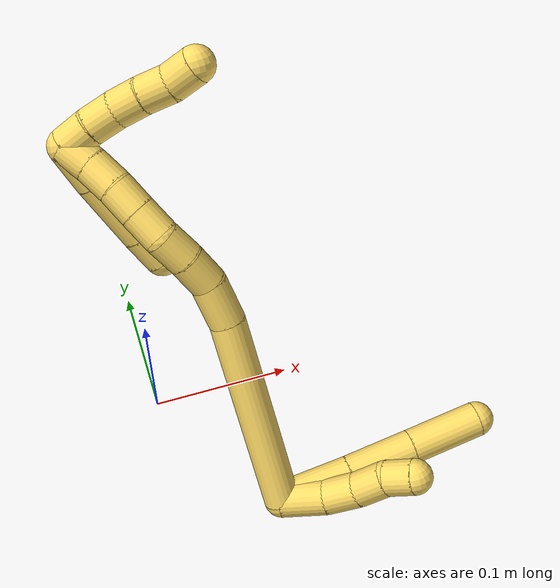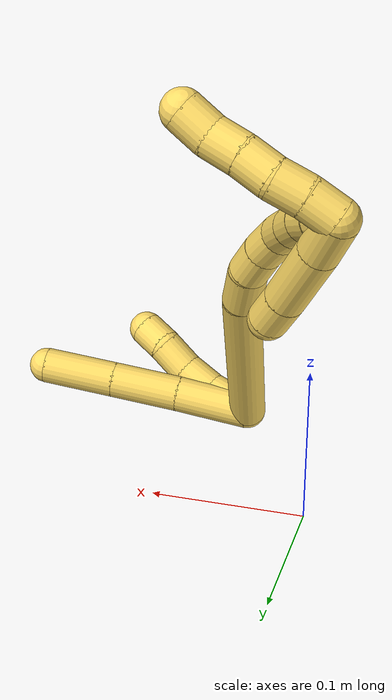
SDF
<sdf version="1.7">
 <world name="default">
  <model name="5">
   <static>0</static>
   <link name="5">
    <collision name="collision-cylinder-e_1_2_8">
     <pose>0.024161 -0.008393 0.001268 1.42088 1.23294 1.0949</pose>
     <geometry><cylinder><radius>0.0125</radius><length>0.051218</length></cylinder></geometry>
     <surface>
      <friction><ode><mu>1.16</mu><mu2>1.16</mu2><slip1>0</slip1><slip2>0</slip2></ode></friction>
      <contact><ode><kp>1e+06</kp><kd>1</kd><max_vel>0</max_vel><min_depth>0.001</min_depth></ode></contact>
     </surface>
    </collision>
    <visual name="visual-cylinder-e_1_2_8">
     <pose>0.024161 -0.008393 0.001268 1.42088 1.23294 1.0949</pose>
     <geometry><cylinder><radius>0.0125</radius><length>0.051218</length></cylinder></geometry>
     <material><ambient>1 0.858824 0.4 1</ambient></material>
    </visual>
    <collision name="collision-cylinder-e_2_8_9">
     <pose>0.071176 -0.023937 0.004088 1.35704 1.26092 1.06368</pose>
     <geometry><cylinder><radius>0.0125</radius><length>0.047993</length></cylinder></geometry>
     <surface>
      <friction><ode><mu>1.16</mu><mu2>1.16</mu2><slip1>0</slip1><slip2>0</slip2></ode></friction>
      <contact><ode><kp>1e+06</kp><kd>1</kd><max_vel>0</max_vel><min_depth>0.001</min_depth></ode></contact>
     </surface>
    </collision>
    <visual name="visual-cylinder-e_2_8_9">
     <pose>0.071176 -0.023937 0.004088 1.35704 1.26092 1.06368</pose>
     <geometry><cylinder><radius>0.0125</radius><length>0.047993</length></cylinder></geometry>
     <material><ambient>1 0.858824 0.4 1</ambient></material>
    </visual>
    <collision name="collision-cylinder-e_3_9_6">
     <pose>0.118241 -0.038552 0.007364 1.34381 1.26438 1.05503</pose>
     <geometry><cylinder><radius>0.0125</radius><length>0.05079</length></cylinder></geometry>
     <surface>
      <friction><ode><mu>1.16</mu><mu2>1.16</mu2><slip1>0</slip1><slip2>0</slip2></ode></friction>
      <contact><ode><kp>1e+06</kp><kd>1</kd><max_vel>0</max_vel><min_depth>0.001</min_depth></ode></contact>
     </surface>
    </collision>
    <visual name="visual-cylinder-e_3_9_6">
     <pose>0.118241 -0.038552 0.007364 1.34381 1.26438 1.05503</pose>
     <geometry><cylinder><radius>0.0125</radius><length>0.05079</length></cylinder></geometry>
     <material><ambient>1 0.858824 0.4 1</ambient></material>
    </visual>
    <collision name="collision-cylinder-e_1_2_10">
     <pose>0.012068 -0.010249 -0.001423 1.7088 0.862012 0.971776</pose>
     <geometry><cylinder><radius>0.0125</radius><length>0.031793</length></cylinder></geometry>
     <surface>
      <friction><ode><mu>1.16</mu><mu2>1.16</mu2><slip1>0</slip1><slip2>0</slip2></ode></friction>
      <contact><ode><kp>1e+06</kp><kd>1</kd><max_vel>0</max_vel><min_depth>0.001</min_depth></ode></contact>
     </surface>
    </collision>
    <visual name="visual-cylinder-e_1_2_10">
     <pose>0.012068 -0.010249 -0.001423 1.7088 0.862012 0.971776</pose>
     <geometry><cylinder><radius>0.0125</radius><length>0.031793</length></cylinder></geometry>
     <material><ambient>1 0.858824 0.4 1</ambient></material>
    </visual>
    <collision name="collision-cylinder-e_2_10_11">
     <pose>0.032764 -0.028945 -0.001048 1.36101 0.784891 0.646612</pose>
     <geometry><cylinder><radius>0.0125</radius><length>0.024417</length></cylinder></geometry>
     <surface>
      <friction><ode><mu>1.16</mu><mu2>1.16</mu2><slip1>0</slip1><slip2>0</slip2></ode></friction>
      <contact><ode><kp>1e+06</kp><kd>1</kd><max_vel>0</max_vel><min_depth>0.001</min_depth></ode></contact>
     </surface>
    </collision>
    <visual name="visual-cylinder-e_2_10_11">
     <pose>0.032764 -0.028945 -0.001048 1.36101 0.784891 0.646612</pose>
     <geometry><cylinder><radius>0.0125</radius><length>0.024417</length></cylinder></geometry>
     <material><ambient>1 0.858824 0.4 1</ambient></material>
    </visual>
    <collision name="collision-cylinder-e_3_11_12">
     <pose>0.048572 -0.045863 0.004664 1.138 0.65584 0.42848</pose>
     <geometry><cylinder><radius>0.0125</radius><length>0.023546</length></cylinder></geometry>
     <surface>
      <friction><ode><mu>1.16</mu><mu2>1.16</mu2><slip1>0</slip1><slip2>0</slip2></ode></friction>
      <contact><ode><kp>1e+06</kp><kd>1</kd><max_vel>0</max_vel><min_depth>0.001</min_depth></ode></contact>
     </surface>
    </collision>
    <visual name="visual-cylinder-e_3_11_12">
     <pose>0.048572 -0.045863 0.004664 1.138 0.65584 0.42848</pose>
     <geometry><cylinder><radius>0.0125</radius><length>0.023546</length></cylinder></geometry>
     <material><ambient>1 0.858824 0.4 1</ambient></material>
    </visual>
    <collision name="collision-cylinder-e_4_12_5">
     <pose>0.062103 -0.062213 0.008741 1.55003 0.678356 0.665429</pose>
     <geometry><cylinder><radius>0.0125</radius><length>0.020245</length></cylinder></geometry>
     <surface>
      <friction><ode><mu>1.16</mu><mu2>1.16</mu2><slip1>0</slip1><slip2>0</slip2></ode></friction>
      <contact><ode><kp>1e+06</kp><kd>1</kd><max_vel>0</max_vel><min_depth>0.001</min_depth></ode></contact>
     </surface>
    </collision>
    <visual name="visual-cylinder-e_4_12_5">
     <pose>0.062103 -0.062213 0.008741 1.55003 0.678356 0.665429</pose>
     <geometry><cylinder><radius>0.0125</radius><length>0.020245</length></cylinder></geometry>
     <material><ambient>1 0.858824 0.4 1</ambient></material>
    </visual>
    <collision name="collision-cylinder-e_1_2_13">
     <pose>-0.000812 -0.001081 0.070753 0.015281 -0.011481 -8.8e-05</pose>
     <geometry><cylinder><radius>0.0125</radius><length>0.141531</length></cylinder></geometry>
     <surface>
      <friction><ode><mu>1.16</mu><mu2>1.16</mu2><slip1>0</slip1><slip2>0</slip2></ode></friction>
      <contact><ode><kp>1e+06</kp><kd>1</kd><max_vel>0</max_vel><min_depth>0.001</min_depth></ode></contact>
     </surface>
    </collision>
    <visual name="visual-cylinder-e_1_2_13">
     <pose>-0.000812 -0.001081 0.070753 0.015281 -0.011481 -8.8e-05</pose>
     <geometry><cylinder><radius>0.0125</radius><length>0.141531</length></cylinder></geometry>
     <material><ambient>1 0.858824 0.4 1</ambient></material>
    </visual>
    <collision name="collision-cylinder-e_2_13_14">
     <pose>-0.00419 -0.00237 0.15666 0.013686 -0.167658 -0.00115</pose>
     <geometry><cylinder><radius>0.0125</radius><length>0.030743</length></cylinder></geometry>
     <surface>
      <friction><ode><mu>1.16</mu><mu2>1.16</mu2><slip1>0</slip1><slip2>0</slip2></ode></friction>
      <contact><ode><kp>1e+06</kp><kd>1</kd><max_vel>0</max_vel><min_depth>0.001</min_depth></ode></contact>
     </surface>
    </collision>
    <visual name="visual-cylinder-e_2_13_14">
     <pose>-0.00419 -0.00237 0.15666 0.013686 -0.167658 -0.00115</pose>
     <geometry><cylinder><radius>0.0125</radius><length>0.030743</length></cylinder></geometry>
     <material><ambient>1 0.858824 0.4 1</ambient></material>
    </visual>
    <collision name="collision-cylinder-e_3_14_15">
     <pose>-0.011672 -0.002437 0.182195 -0.013544 -0.442294 0.003045</pose>
     <geometry><cylinder><radius>0.0125</radius><length>0.022974</length></cylinder></geometry>
     <surface>
      <friction><ode><mu>1.16</mu><mu2>1.16</mu2><slip1>0</slip1><slip2>0</slip2></ode></friction>
      <contact><ode><kp>1e+06</kp><kd>1</kd><max_vel>0</max_vel><min_depth>0.001</min_depth></ode></contact>
     </surface>
    </collision>
    <visual name="visual-cylinder-e_3_14_15">
     <pose>-0.011672 -0.002437 0.182195 -0.013544 -0.442294 0.003045</pose>
     <geometry><cylinder><radius>0.0125</radius><length>0.022974</length></cylinder></geometry>
     <material><ambient>1 0.858824 0.4 1</ambient></material>
    </visual>
    <collision name="collision-cylinder-e_4_15_16">
     <pose>-0.021674 -0.000959 0.202019 -0.140611 -0.489833 0.035198</pose>
     <geometry><cylinder><radius>0.0125</radius><length>0.021619</length></cylinder></geometry>
     <surface>
      <friction><ode><mu>1.16</mu><mu2>1.16</mu2><slip1>0</slip1><slip2>0</slip2></ode></friction>
      <contact><ode><kp>1e+06</kp><kd>1</kd><max_vel>0</max_vel><min_depth>0.001</min_depth></ode></contact>
     </surface>
    </collision>
    <visual name="visual-cylinder-e_4_15_16">
     <pose>-0.021674 -0.000959 0.202019 -0.140611 -0.489833 0.035198</pose>
     <geometry><cylinder><radius>0.0125</radius><length>0.021619</length></cylinder></geometry>
     <material><ambient>1 0.858824 0.4 1</ambient></material>
    </visual>
    <collision name="collision-cylinder-e_5_16_17">
     <pose>-0.030054 0.0049 0.220592 -0.459974 -0.31278 0.0738</pose>
     <geometry><cylinder><radius>0.0125</radius><length>0.021413</length></cylinder></geometry>
     <surface>
      <friction><ode><mu>1.16</mu><mu2>1.16</mu2><slip1>0</slip1><slip2>0</slip2></ode></friction>
      <contact><ode><kp>1e+06</kp><kd>1</kd><max_vel>0</max_vel><min_depth>0.001</min_depth></ode></contact>
     </surface>
    </collision>
    <visual name="visual-cylinder-e_5_16_17">
     <pose>-0.030054 0.0049 0.220592 -0.459974 -0.31278 0.0738</pose>
     <geometry><cylinder><radius>0.0125</radius><length>0.021413</length></cylinder></geometry>
     <material><ambient>1 0.858824 0.4 1</ambient></material>
    </visual>
    <collision name="collision-cylinder-e_6_17_18">
     <pose>-0.036292 0.014113 0.238553 -0.488242 -0.286253 0.071763</pose>
     <geometry><cylinder><radius>0.0125</radius><length>0.02085</length></cylinder></geometry>
     <surface>
      <friction><ode><mu>1.16</mu><mu2>1.16</mu2><slip1>0</slip1><slip2>0</slip2></ode></friction>
      <contact><ode><kp>1e+06</kp><kd>1</kd><max_vel>0</max_vel><min_depth>0.001</min_depth></ode></contact>
     </surface>
    </collision>
    <visual name="visual-cylinder-e_6_17_18">
     <pose>-0.036292 0.014113 0.238553 -0.488242 -0.286253 0.071763</pose>
     <geometry><cylinder><radius>0.0125</radius><length>0.02085</length></cylinder></geometry>
     <material><ambient>1 0.858824 0.4 1</ambient></material>
    </visual>
    <collision name="collision-cylinder-e_7_18_19">
     <pose>-0.042473 0.024643 0.255404 -0.629349 -0.315468 0.103449</pose>
     <geometry><cylinder><radius>0.0125</radius><length>0.020868</length></cylinder></geometry>
     <surface>
      <friction><ode><mu>1.16</mu><mu2>1.16</mu2><slip1>0</slip1><slip2>0</slip2></ode></friction>
      <contact><ode><kp>1e+06</kp><kd>1</kd><max_vel>0</max_vel><min_depth>0.001</min_depth></ode></contact>
     </surface>
    </collision>
    <visual name="visual-cylinder-e_7_18_19">
     <pose>-0.042473 0.024643 0.255404 -0.629349 -0.315468 0.103449</pose>
     <geometry><cylinder><radius>0.0125</radius><length>0.020868</length></cylinder></geometry>
     <material><ambient>1 0.858824 0.4 1</ambient></material>
    </visual>
    <collision name="collision-cylinder-e_8_19_1">
     <pose>-0.049708 0.036083 0.270679 -0.657371 -0.411252 0.142032</pose>
     <geometry><cylinder><radius>0.0125</radius><length>0.020002</length></cylinder></geometry>
     <surface>
      <friction><ode><mu>1.16</mu><mu2>1.16</mu2><slip1>0</slip1><slip2>0</slip2></ode></friction>
      <contact><ode><kp>1e+06</kp><kd>1</kd><max_vel>0</max_vel><min_depth>0.001</min_depth></ode></contact>
     </surface>
    </collision>
    <visual name="visual-cylinder-e_8_19_1">
     <pose>-0.049708 0.036083 0.270679 -0.657371 -0.411252 0.142032</pose>
     <geometry><cylinder><radius>0.0125</radius><length>0.020002</length></cylinder></geometry>
     <material><ambient>1 0.858824 0.4 1</ambient></material>
    </visual>
    <collision name="collision-cylinder-e_1_1_20">
     <pose>-0.048759 0.041773 0.264361 -3.1351 0.349474 -3.10483</pose>
     <geometry><cylinder><radius>0.0125</radius><length>0.028897</length></cylinder></geometry>
     <surface>
      <friction><ode><mu>1.16</mu><mu2>1.16</mu2><slip1>0</slip1><slip2>0</slip2></ode></friction>
      <contact><ode><kp>1e+06</kp><kd>1</kd><max_vel>0</max_vel><min_depth>0.001</min_depth></ode></contact>
     </surface>
    </collision>
    <visual name="visual-cylinder-e_1_1_20">
     <pose>-0.048759 0.041773 0.264361 -3.1351 0.349474 -3.10483</pose>
     <geometry><cylinder><radius>0.0125</radius><length>0.028897</length></cylinder></geometry>
     <material><ambient>1 0.858824 0.4 1</ambient></material>
    </visual>
    <collision name="collision-cylinder-e_2_20_21">
     <pose>-0.03456 0.041698 0.228813 3.13419 0.398508 3.10494</pose>
     <geometry><cylinder><radius>0.0125</radius><length>0.047686</length></cylinder></geometry>
     <surface>
      <friction><ode><mu>1.16</mu><mu2>1.16</mu2><slip1>0</slip1><slip2>0</slip2></ode></friction>
      <contact><ode><kp>1e+06</kp><kd>1</kd><max_vel>0</max_vel><min_depth>0.001</min_depth></ode></contact>
     </surface>
    </collision>
    <visual name="visual-cylinder-e_2_20_21">
     <pose>-0.03456 0.041698 0.228813 3.13419 0.398508 3.10494</pose>
     <geometry><cylinder><radius>0.0125</radius><length>0.047686</length></cylinder></geometry>
     <material><ambient>1 0.858824 0.4 1</ambient></material>
    </visual>
    <collision name="collision-cylinder-e_3_21_4">
     <pose>-0.020395 0.041331 0.196213 3.12238 0.433007 3.0543</pose>
     <geometry><cylinder><radius>0.0125</radius><length>0.023418</length></cylinder></geometry>
     <surface>
      <friction><ode><mu>1.16</mu><mu2>1.16</mu2><slip1>0</slip1><slip2>0</slip2></ode></friction>
      <contact><ode><kp>1e+06</kp><kd>1</kd><max_vel>0</max_vel><min_depth>0.001</min_depth></ode></contact>
     </surface>
    </collision>
    <visual name="visual-cylinder-e_3_21_4">
     <pose>-0.020395 0.041331 0.196213 3.12238 0.433007 3.0543</pose>
     <geometry><cylinder><radius>0.0125</radius><length>0.023418</length></cylinder></geometry>
     <material><ambient>1 0.858824 0.4 1</ambient></material>
    </visual>
    <collision name="collision-cylinder-e_1_1_22">
     <pose>-0.04606 0.036632 0.281937 0.901053 0.870429 0.442433</pose>
     <geometry><cylinder><radius>0.0125</radius><length>0.02</length></cylinder></geometry>
     <surface>
      <friction><ode><mu>1.16</mu><mu2>1.16</mu2><slip1>0</slip1><slip2>0</slip2></ode></friction>
      <contact><ode><kp>1e+06</kp><kd>1</kd><max_vel>0</max_vel><min_depth>0.001</min_depth></ode></contact>
     </surface>
    </collision>
    <visual name="visual-cylinder-e_1_1_22">
     <pose>-0.04606 0.036632 0.281937 0.901053 0.870429 0.442433</pose>
     <geometry><cylinder><radius>0.0125</radius><length>0.02</length></cylinder></geometry>
     <material><ambient>1 0.858824 0.4 1</ambient></material>
    </visual>
    <collision name="collision-cylinder-e_2_22_23">
     <pose>-0.030112 0.026944 0.289036 0.981541 0.9794 0.554955</pose>
     <geometry><cylinder><radius>0.0125</radius><length>0.02</length></cylinder></geometry>
     <surface>
      <friction><ode><mu>1.16</mu><mu2>1.16</mu2><slip1>0</slip1><slip2>0</slip2></ode></friction>
      <contact><ode><kp>1e+06</kp><kd>1</kd><max_vel>0</max_vel><min_depth>0.001</min_depth></ode></contact>
     </surface>
    </collision>
    <visual name="visual-cylinder-e_2_22_23">
     <pose>-0.030112 0.026944 0.289036 0.981541 0.9794 0.554955</pose>
     <geometry><cylinder><radius>0.0125</radius><length>0.02</length></cylinder></geometry>
     <material><ambient>1 0.858824 0.4 1</ambient></material>
    </visual>
    <collision name="collision-cylinder-e_3_23_24">
     <pose>-0.014477 0.015965 0.294578 1.2031 0.823255 0.5823</pose>
     <geometry><cylinder><radius>0.0125</radius><length>0.02</length></cylinder></geometry>
     <surface>
      <friction><ode><mu>1.16</mu><mu2>1.16</mu2><slip1>0</slip1><slip2>0</slip2></ode></friction>
      <contact><ode><kp>1e+06</kp><kd>1</kd><max_vel>0</max_vel><min_depth>0.001</min_depth></ode></contact>
     </surface>
    </collision>
    <visual name="visual-cylinder-e_3_23_24">
     <pose>-0.014477 0.015965 0.294578 1.2031 0.823255 0.5823</pose>
     <geometry><cylinder><radius>0.0125</radius><length>0.02</length></cylinder></geometry>
     <material><ambient>1 0.858824 0.4 1</ambient></material>
    </visual>
    <collision name="collision-cylinder-e_4_24_25">
     <pose>0.000679 0.003618 0.298686 1.30036 0.898338 0.702734</pose>
     <geometry><cylinder><radius>0.0125</radius><length>0.02</length></cylinder></geometry>
     <surface>
      <friction><ode><mu>1.16</mu><mu2>1.16</mu2><slip1>0</slip1><slip2>0</slip2></ode></friction>
      <contact><ode><kp>1e+06</kp><kd>1</kd><max_vel>0</max_vel><min_depth>0.001</min_depth></ode></contact>
     </surface>
    </collision>
    <visual name="visual-cylinder-e_4_24_25">
     <pose>0.000679 0.003618 0.298686 1.30036 0.898338 0.702734</pose>
     <geometry><cylinder><radius>0.0125</radius><length>0.02</length></cylinder></geometry>
     <material><ambient>1 0.858824 0.4 1</ambient></material>
    </visual>
    <collision name="collision-cylinder-e_5_25_3">
     <pose>0.015296 -0.008735 0.304027 1.046 0.746929 0.444389</pose>
     <geometry><cylinder><radius>0.0125</radius><length>0.02</length></cylinder></geometry>
     <surface>
      <friction><ode><mu>1.16</mu><mu2>1.16</mu2><slip1>0</slip1><slip2>0</slip2></ode></friction>
      <contact><ode><kp>1e+06</kp><kd>1</kd><max_vel>0</max_vel><min_depth>0.001</min_depth></ode></contact>
     </surface>
    </collision>
    <visual name="visual-cylinder-e_5_25_3">
     <pose>0.015296 -0.008735 0.304027 1.046 0.746929 0.444389</pose>
     <geometry><cylinder><radius>0.0125</radius><length>0.02</length></cylinder></geometry>
     <material><ambient>1 0.858824 0.4 1</ambient></material>
    </visual>
    <collision name="collision-sphere-3">
     <pose>0.02209 -0.015085 0.307703 0 -0 0</pose>
     <geometry><sphere><radius>0.0125</radius></sphere></geometry>
     <surface>
      <friction><ode><mu>1.16</mu><mu2>1.16</mu2><slip1>0</slip1><slip2>0</slip2></ode></friction>
      <contact><ode><kp>1e+06</kp><kd>1</kd><max_vel>0</max_vel><min_depth>0.001</min_depth></ode></contact>
     </surface>
    </collision>
    <visual name="visual-sphere-3">
     <pose>0.02209 -0.015085 0.307703 0 -0 0</pose>
     <geometry><sphere><radius>0.0125</radius></sphere></geometry>
     <material><ambient>1 0.858824 0.4 1</ambient></material>
    </visual>
    <collision name="collision-sphere-25">
     <pose>0.008502 -0.002384 0.300351 0 -0 0</pose>
     <geometry><sphere><radius>0.0125</radius></sphere></geometry>
     <surface>
      <friction><ode><mu>1.16</mu><mu2>1.16</mu2><slip1>0</slip1><slip2>0</slip2></ode></friction>
      <contact><ode><kp>1e+06</kp><kd>1</kd><max_vel>0</max_vel><min_depth>0.001</min_depth></ode></contact>
     </surface>
    </collision>
    <visual name="visual-sphere-25">
     <pose>0.008502 -0.002384 0.300351 0 -0 0</pose>
     <geometry><sphere><radius>0.0125</radius></sphere></geometry>
     <material><ambient>1 0.858824 0.4 1</ambient></material>
    </visual>
    <collision name="collision-sphere-24">
     <pose>-0.007143 0.009621 0.297022 0 -0 0</pose>
     <geometry><sphere><radius>0.0125</radius></sphere></geometry>
     <surface>
      <friction><ode><mu>1.16</mu><mu2>1.16</mu2><slip1>0</slip1><slip2>0</slip2></ode></friction>
      <contact><ode><kp>1e+06</kp><kd>1</kd><max_vel>0</max_vel><min_depth>0.001</min_depth></ode></contact>
     </surface>
    </collision>
    <visual name="visual-sphere-24">
     <pose>-0.007143 0.009621 0.297022 0 -0 0</pose>
     <geometry><sphere><radius>0.0125</radius></sphere></geometry>
     <material><ambient>1 0.858824 0.4 1</ambient></material>
    </visual>
    <collision name="collision-sphere-23">
     <pose>-0.021811 0.022309 0.292135 0 -0 0</pose>
     <geometry><sphere><radius>0.0125</radius></sphere></geometry>
     <surface>
      <friction><ode><mu>1.16</mu><mu2>1.16</mu2><slip1>0</slip1><slip2>0</slip2></ode></friction>
      <contact><ode><kp>1e+06</kp><kd>1</kd><max_vel>0</max_vel><min_depth>0.001</min_depth></ode></contact>
     </surface>
    </collision>
    <visual name="visual-sphere-23">
     <pose>-0.021811 0.022309 0.292135 0 -0 0</pose>
     <geometry><sphere><radius>0.0125</radius></sphere></geometry>
     <material><ambient>1 0.858824 0.4 1</ambient></material>
    </visual>
    <collision name="collision-sphere-22">
     <pose>-0.038414 0.031579 0.285938 0 -0 0</pose>
     <geometry><sphere><radius>0.0125</radius></sphere></geometry>
     <surface>
      <friction><ode><mu>1.16</mu><mu2>1.16</mu2><slip1>0</slip1><slip2>0</slip2></ode></friction>
      <contact><ode><kp>1e+06</kp><kd>1</kd><max_vel>0</max_vel><min_depth>0.001</min_depth></ode></contact>
     </surface>
    </collision>
    <visual name="visual-sphere-22">
     <pose>-0.038414 0.031579 0.285938 0 -0 0</pose>
     <geometry><sphere><radius>0.0125</radius></sphere></geometry>
     <material><ambient>1 0.858824 0.4 1</ambient></material>
    </visual>
    <collision name="collision-sphere-4">
     <pose>-0.015482 0.041127 0.185586 0 -0 0</pose>
     <geometry><sphere><radius>0.0125</radius></sphere></geometry>
     <surface>
      <friction><ode><mu>1.16</mu><mu2>1.16</mu2><slip1>0</slip1><slip2>0</slip2></ode></friction>
      <contact><ode><kp>1e+06</kp><kd>1</kd><max_vel>0</max_vel><min_depth>0.001</min_depth></ode></contact>
     </surface>
    </collision>
    <visual name="visual-sphere-4">
     <pose>-0.015482 0.041127 0.185586 0 -0 0</pose>
     <geometry><sphere><radius>0.0125</radius></sphere></geometry>
     <material><ambient>1 0.858824 0.4 1</ambient></material>
    </visual>
    <collision name="collision-sphere-21">
     <pose>-0.025308 0.041535 0.206839 0 -0 0</pose>
     <geometry><sphere><radius>0.0125</radius></sphere></geometry>
     <surface>
      <friction><ode><mu>1.16</mu><mu2>1.16</mu2><slip1>0</slip1><slip2>0</slip2></ode></friction>
      <contact><ode><kp>1e+06</kp><kd>1</kd><max_vel>0</max_vel><min_depth>0.001</min_depth></ode></contact>
     </surface>
    </collision>
    <visual name="visual-sphere-21">
     <pose>-0.025308 0.041535 0.206839 0 -0 0</pose>
     <geometry><sphere><radius>0.0125</radius></sphere></geometry>
     <material><ambient>1 0.858824 0.4 1</ambient></material>
    </visual>
    <collision name="collision-sphere-20">
     <pose>-0.043812 0.041861 0.250787 0 -0 0</pose>
     <geometry><sphere><radius>0.0125</radius></sphere></geometry>
     <surface>
      <friction><ode><mu>1.16</mu><mu2>1.16</mu2><slip1>0</slip1><slip2>0</slip2></ode></friction>
      <contact><ode><kp>1e+06</kp><kd>1</kd><max_vel>0</max_vel><min_depth>0.001</min_depth></ode></contact>
     </surface>
    </collision>
    <visual name="visual-sphere-20">
     <pose>-0.043812 0.041861 0.250787 0 -0 0</pose>
     <geometry><sphere><radius>0.0125</radius></sphere></geometry>
     <material><ambient>1 0.858824 0.4 1</ambient></material>
    </visual>
    <collision name="collision-sphere-11">
     <pose>0.041392 -0.037393 0.000751 0 -0 0</pose>
     <geometry><sphere><radius>0.0125</radius></sphere></geometry>
     <surface>
      <friction><ode><mu>1.16</mu><mu2>1.16</mu2><slip1>0</slip1><slip2>0</slip2></ode></friction>
      <contact><ode><kp>1e+06</kp><kd>1</kd><max_vel>0</max_vel><min_depth>0.001</min_depth></ode></contact>
     </surface>
    </collision>
    <visual name="visual-sphere-11">
     <pose>0.041392 -0.037393 0.000751 0 -0 0</pose>
     <geometry><sphere><radius>0.0125</radius></sphere></geometry>
     <material><ambient>1 0.858824 0.4 1</ambient></material>
    </visual>
    <collision name="collision-sphere-10">
     <pose>0.024136 -0.020498 -0.002847 0 -0 0</pose>
     <geometry><sphere><radius>0.0125</radius></sphere></geometry>
     <surface>
      <friction><ode><mu>1.16</mu><mu2>1.16</mu2><slip1>0</slip1><slip2>0</slip2></ode></friction>
      <contact><ode><kp>1e+06</kp><kd>1</kd><max_vel>0</max_vel><min_depth>0.001</min_depth></ode></contact>
     </surface>
    </collision>
    <visual name="visual-sphere-10">
     <pose>0.024136 -0.020498 -0.002847 0 -0 0</pose>
     <geometry><sphere><radius>0.0125</radius></sphere></geometry>
     <material><ambient>1 0.858824 0.4 1</ambient></material>
    </visual>
    <collision name="collision-sphere-6">
     <pose>0.142453 -0.046016 0.009088 0 -0 0</pose>
     <geometry><sphere><radius>0.0125</radius></sphere></geometry>
     <surface>
      <friction><ode><mu>1.16</mu><mu2>1.16</mu2><slip1>0</slip1><slip2>0</slip2></ode></friction>
      <contact><ode><kp>1e+06</kp><kd>1</kd><max_vel>0</max_vel><min_depth>0.001</min_depth></ode></contact>
     </surface>
    </collision>
    <visual name="visual-sphere-6">
     <pose>0.142453 -0.046016 0.009088 0 -0 0</pose>
     <geometry><sphere><radius>0.0125</radius></sphere></geometry>
     <material><ambient>1 0.858824 0.4 1</ambient></material>
    </visual>
    <collision name="collision-sphere-9">
     <pose>0.094029 -0.031088 0.00564 0 -0 0</pose>
     <geometry><sphere><radius>0.0125</radius></sphere></geometry>
     <surface>
      <friction><ode><mu>1.16</mu><mu2>1.16</mu2><slip1>0</slip1><slip2>0</slip2></ode></friction>
      <contact><ode><kp>1e+06</kp><kd>1</kd><max_vel>0</max_vel><min_depth>0.001</min_depth></ode></contact>
     </surface>
    </collision>
    <visual name="visual-sphere-9">
     <pose>0.094029 -0.031088 0.00564 0 -0 0</pose>
     <geometry><sphere><radius>0.0125</radius></sphere></geometry>
     <material><ambient>1 0.858824 0.4 1</ambient></material>
    </visual>
    <collision name="collision-sphere-2">
     <geometry><sphere><radius>0.0125</radius></sphere></geometry>
     <surface>
      <friction><ode><mu>1.16</mu><mu2>1.16</mu2><slip1>0</slip1><slip2>0</slip2></ode></friction>
      <contact><ode><kp>1e+06</kp><kd>1</kd><max_vel>0</max_vel><min_depth>0.001</min_depth></ode></contact>
     </surface>
    </collision>
    <visual name="visual-sphere-2">
     <geometry><sphere><radius>0.0125</radius></sphere></geometry>
     <material><ambient>1 0.858824 0.4 1</ambient></material>
    </visual>
    <collision name="collision-sphere-19">
     <pose>-0.04571 0.030481 0.263422 0 -0 0</pose>
     <geometry><sphere><radius>0.0125</radius></sphere></geometry>
     <surface>
      <friction><ode><mu>1.16</mu><mu2>1.16</mu2><slip1>0</slip1><slip2>0</slip2></ode></friction>
      <contact><ode><kp>1e+06</kp><kd>1</kd><max_vel>0</max_vel><min_depth>0.001</min_depth></ode></contact>
     </surface>
    </collision>
    <visual name="visual-sphere-19">
     <pose>-0.04571 0.030481 0.263422 0 -0 0</pose>
     <geometry><sphere><radius>0.0125</radius></sphere></geometry>
     <material><ambient>1 0.858824 0.4 1</ambient></material>
    </visual>
    <collision name="collision-sphere-8">
     <pose>0.048322 -0.016787 0.002536 0 -0 0</pose>
     <geometry><sphere><radius>0.0125</radius></sphere></geometry>
     <surface>
      <friction><ode><mu>1.16</mu><mu2>1.16</mu2><slip1>0</slip1><slip2>0</slip2></ode></friction>
      <contact><ode><kp>1e+06</kp><kd>1</kd><max_vel>0</max_vel><min_depth>0.001</min_depth></ode></contact>
     </surface>
    </collision>
    <visual name="visual-sphere-8">
     <pose>0.048322 -0.016787 0.002536 0 -0 0</pose>
     <geometry><sphere><radius>0.0125</radius></sphere></geometry>
     <material><ambient>1 0.858824 0.4 1</ambient></material>
    </visual>
    <collision name="collision-sphere-12">
     <pose>0.055751 -0.054333 0.008577 0 -0 0</pose>
     <geometry><sphere><radius>0.0125</radius></sphere></geometry>
     <surface>
      <friction><ode><mu>1.16</mu><mu2>1.16</mu2><slip1>0</slip1><slip2>0</slip2></ode></friction>
      <contact><ode><kp>1e+06</kp><kd>1</kd><max_vel>0</max_vel><min_depth>0.001</min_depth></ode></contact>
     </surface>
    </collision>
    <visual name="visual-sphere-12">
     <pose>0.055751 -0.054333 0.008577 0 -0 0</pose>
     <geometry><sphere><radius>0.0125</radius></sphere></geometry>
     <material><ambient>1 0.858824 0.4 1</ambient></material>
    </visual>
    <collision name="collision-sphere-5">
     <pose>0.068455 -0.070092 0.008904 0 -0 0</pose>
     <geometry><sphere><radius>0.0125</radius></sphere></geometry>
     <surface>
      <friction><ode><mu>1.16</mu><mu2>1.16</mu2><slip1>0</slip1><slip2>0</slip2></ode></friction>
      <contact><ode><kp>1e+06</kp><kd>1</kd><max_vel>0</max_vel><min_depth>0.001</min_depth></ode></contact>
     </surface>
    </collision>
    <visual name="visual-sphere-5">
     <pose>0.068455 -0.070092 0.008904 0 -0 0</pose>
     <geometry><sphere><radius>0.0125</radius></sphere></geometry>
     <material><ambient>1 0.858824 0.4 1</ambient></material>
    </visual>
    <collision name="collision-sphere-13">
     <pose>-0.001625 -0.002163 0.141505 0 -0 0</pose>
     <geometry><sphere><radius>0.0125</radius></sphere></geometry>
     <surface>
      <friction><ode><mu>1.16</mu><mu2>1.16</mu2><slip1>0</slip1><slip2>0</slip2></ode></friction>
      <contact><ode><kp>1e+06</kp><kd>1</kd><max_vel>0</max_vel><min_depth>0.001</min_depth></ode></contact>
     </surface>
    </collision>
    <visual name="visual-sphere-13">
     <pose>-0.001625 -0.002163 0.141505 0 -0 0</pose>
     <geometry><sphere><radius>0.0125</radius></sphere></geometry>
     <material><ambient>1 0.858824 0.4 1</ambient></material>
    </visual>
    <collision name="collision-sphere-14">
     <pose>-0.006755 -0.002577 0.171814 0 -0 0</pose>
     <geometry><sphere><radius>0.0125</radius></sphere></geometry>
     <surface>
      <friction><ode><mu>1.16</mu><mu2>1.16</mu2><slip1>0</slip1><slip2>0</slip2></ode></friction>
      <contact><ode><kp>1e+06</kp><kd>1</kd><max_vel>0</max_vel><min_depth>0.001</min_depth></ode></contact>
     </surface>
    </collision>
    <visual name="visual-sphere-14">
     <pose>-0.006755 -0.002577 0.171814 0 -0 0</pose>
     <geometry><sphere><radius>0.0125</radius></sphere></geometry>
     <material><ambient>1 0.858824 0.4 1</ambient></material>
    </visual>
    <collision name="collision-sphere-15">
     <pose>-0.016588 -0.002296 0.192575 0 -0 0</pose>
     <geometry><sphere><radius>0.0125</radius></sphere></geometry>
     <surface>
      <friction><ode><mu>1.16</mu><mu2>1.16</mu2><slip1>0</slip1><slip2>0</slip2></ode></friction>
      <contact><ode><kp>1e+06</kp><kd>1</kd><max_vel>0</max_vel><min_depth>0.001</min_depth></ode></contact>
     </surface>
    </collision>
    <visual name="visual-sphere-15">
     <pose>-0.016588 -0.002296 0.192575 0 -0 0</pose>
     <geometry><sphere><radius>0.0125</radius></sphere></geometry>
     <material><ambient>1 0.858824 0.4 1</ambient></material>
    </visual>
    <collision name="collision-sphere-16">
     <pose>-0.026759 0.000377 0.211464 0 -0 0</pose>
     <geometry><sphere><radius>0.0125</radius></sphere></geometry>
     <surface>
      <friction><ode><mu>1.16</mu><mu2>1.16</mu2><slip1>0</slip1><slip2>0</slip2></ode></friction>
      <contact><ode><kp>1e+06</kp><kd>1</kd><max_vel>0</max_vel><min_depth>0.001</min_depth></ode></contact>
     </surface>
    </collision>
    <visual name="visual-sphere-16">
     <pose>-0.026759 0.000377 0.211464 0 -0 0</pose>
     <geometry><sphere><radius>0.0125</radius></sphere></geometry>
     <material><ambient>1 0.858824 0.4 1</ambient></material>
    </visual>
    <collision name="collision-sphere-17">
     <pose>-0.033348 0.009422 0.22972 0 -0 0</pose>
     <geometry><sphere><radius>0.0125</radius></sphere></geometry>
     <surface>
      <friction><ode><mu>1.16</mu><mu2>1.16</mu2><slip1>0</slip1><slip2>0</slip2></ode></friction>
      <contact><ode><kp>1e+06</kp><kd>1</kd><max_vel>0</max_vel><min_depth>0.001</min_depth></ode></contact>
     </surface>
    </collision>
    <visual name="visual-sphere-17">
     <pose>-0.033348 0.009422 0.22972 0 -0 0</pose>
     <geometry><sphere><radius>0.0125</radius></sphere></geometry>
     <material><ambient>1 0.858824 0.4 1</ambient></material>
    </visual>
    <collision name="collision-sphere-18">
     <pose>-0.039236 0.018804 0.247385 0 -0 0</pose>
     <geometry><sphere><radius>0.0125</radius></sphere></geometry>
     <surface>
      <friction><ode><mu>1.16</mu><mu2>1.16</mu2><slip1>0</slip1><slip2>0</slip2></ode></friction>
      <contact><ode><kp>1e+06</kp><kd>1</kd><max_vel>0</max_vel><min_depth>0.001</min_depth></ode></contact>
     </surface>
    </collision>
    <visual name="visual-sphere-18">
     <pose>-0.039236 0.018804 0.247385 0 -0 0</pose>
     <geometry><sphere><radius>0.0125</radius></sphere></geometry>
     <material><ambient>1 0.858824 0.4 1</ambient></material>
    </visual>
    <collision name="collision-sphere-1">
     <pose>-0.053706 0.041684 0.277936 0 -0 0</pose>
     <geometry><sphere><radius>0.0125</radius></sphere></geometry>
     <surface>
      <friction><ode><mu>1.16</mu><mu2>1.16</mu2><slip1>0</slip1><slip2>0</slip2></ode></friction>
      <contact><ode><kp>1e+06</kp><kd>1</kd><max_vel>0</max_vel><min_depth>0.001</min_depth></ode></contact>
     </surface>
    </collision>
    <visual name="visual-sphere-1">
     <pose>-0.053706 0.041684 0.277936 0 -0 0</pose>
     <geometry><sphere><radius>0.0125</radius></sphere></geometry>
     <material><ambient>1 0.858824 0.4 1</ambient></material>
    </visual>
    <inertial>
     <pose>0.006605 0.000101 0.129581 0 -0 0</pose>
     <mass>0.75</mass>
     <inertia><ixx>0.000293</ixx><ixy>0</ixy><ixz>0</ixz><iyy>0.000323</iyy><iyz>0</iyz><izz>-6e-06</izz></inertia>
    </inertial>
   </link>
   <pose>0.06379 -0.109778 0.012473 -0.60722 0.096067 0.284265</pose>
  </model>
 </world>
</sdf>
